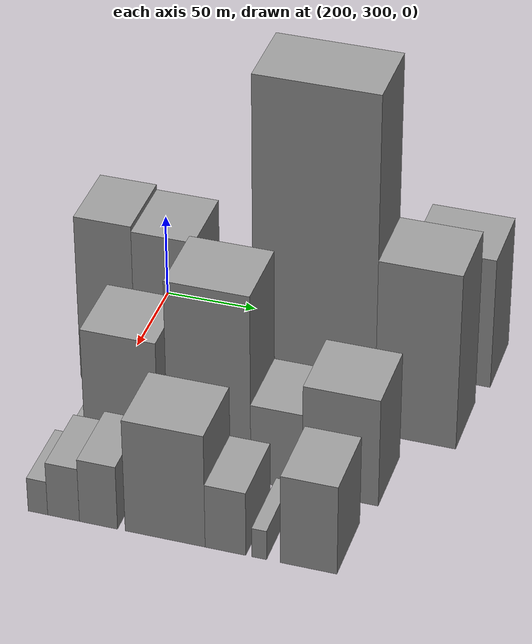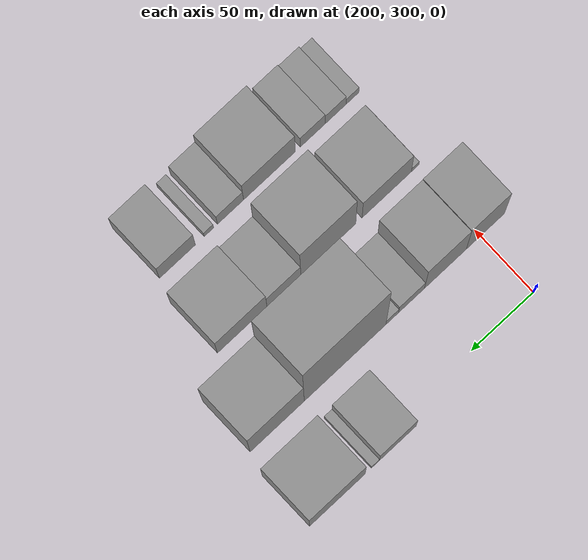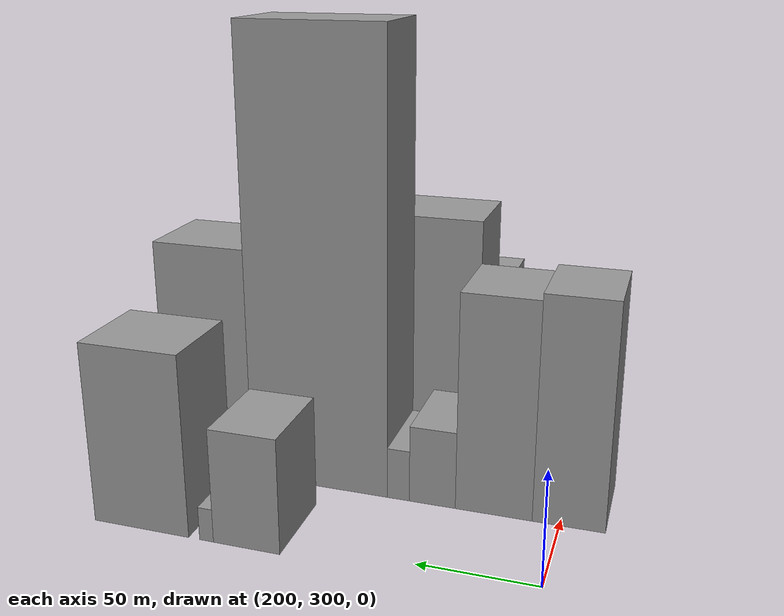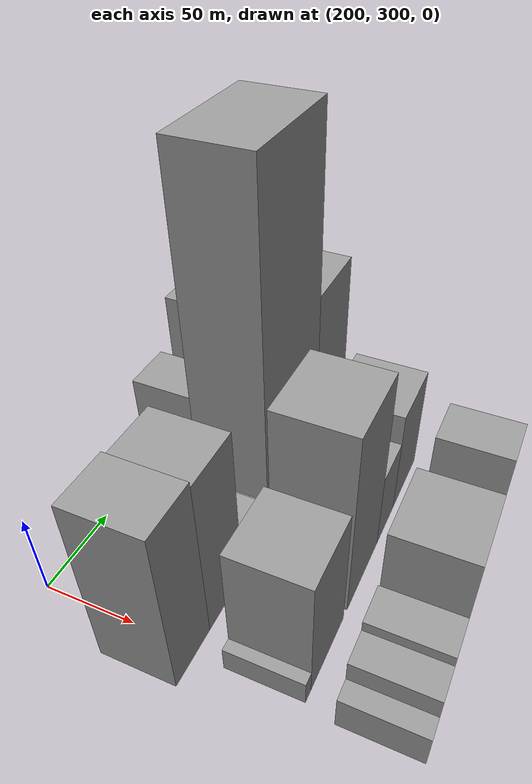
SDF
<sdf version="1.6">
 <world name="default">
  <model name="building_147">
   <static>1</static>
   <pose>210.0000 418.2549 0 0.000000 0.000000 0.000000</pose>
   <link name="link">
    <pose>0 0 25.50 0 0 0</pose>
    <collision name="collision"><geometry><box><size>40.0000 29.3568 51.0000</size></box></geometry></collision>
    <visual name="visual">
     <cast_shadows>0</cast_shadows>
     <geometry><box><size>40.0000 29.3568 51.0000</size></box></geometry>
     <material>
      <script>
       <uri>model://grey_wall/materials/scripts</uri>
       <uri>model://grey_wall/materials/textures</uri>
       <name>vrc/grey_wall</name>
      </script>
     </material>
    </visual>
   </link>
  </model>
  <model name="building_148">
   <static>1</static>
   <pose>210.0000 436.0573 0 0.000000 0.000000 0.000000</pose>
   <link name="link">
    <pose>0 0 7.50 0 0 0</pose>
    <collision name="collision"><geometry><box><size>40.0000 6.2479 15.0000</size></box></geometry></collision>
    <visual name="visual">
     <cast_shadows>0</cast_shadows>
     <geometry><box><size>40.0000 6.2479 15.0000</size></box></geometry>
     <material>
      <script>
       <uri>model://grey_wall/materials/scripts</uri>
       <uri>model://grey_wall/materials/textures</uri>
       <name>vrc/grey_wall</name>
      </script>
     </material>
    </visual>
   </link>
  </model>
  <model name="building_149">
   <static>1</static>
   <pose>210.0000 466.2391 0 0.000000 0.000000 0.000000</pose>
   <link name="link">
    <pose>0 0 40.50 0 0 0</pose>
    <collision name="collision"><geometry><box><size>40.0000 44.1155 81.0000</size></box></geometry></collision>
    <visual name="visual">
     <cast_shadows>0</cast_shadows>
     <geometry><box><size>40.0000 44.1155 81.0000</size></box></geometry>
     <material>
      <script>
       <uri>model://grey_wall/materials/scripts</uri>
       <uri>model://grey_wall/materials/textures</uri>
       <name>vrc/grey_wall</name>
      </script>
     </material>
    </visual>
   </link>
  </model>
  <model name="building_201">
   <static>1</static>
   <pose>265.0000 296.2826 0 0.000000 0.000000 0.000000</pose>
   <link name="link">
    <pose>0 0 51.00 0 0 0</pose>
    <collision name="collision"><geometry><box><size>40.0000 30.6699 102.0000</size></box></geometry></collision>
    <visual name="visual">
     <cast_shadows>0</cast_shadows>
     <geometry><box><size>40.0000 30.6699 102.0000</size></box></geometry>
     <material>
      <script>
       <uri>model://grey_wall/materials/scripts</uri>
       <uri>model://grey_wall/materials/textures</uri>
       <name>vrc/grey_wall</name>
      </script>
     </material>
    </visual>
   </link>
  </model>
  <model name="building_202">
   <static>1</static>
   <pose>265.0000 328.3271 0 0.000000 0.000000 0.000000</pose>
   <link name="link">
    <pose>0 0 49.50 0 0 0</pose>
    <collision name="collision"><geometry><box><size>40.0000 33.4192 99.0000</size></box></geometry></collision>
    <visual name="visual">
     <cast_shadows>0</cast_shadows>
     <geometry><box><size>40.0000 33.4192 99.0000</size></box></geometry>
     <material>
      <script>
       <uri>model://grey_wall/materials/scripts</uri>
       <uri>model://grey_wall/materials/textures</uri>
       <name>vrc/grey_wall</name>
      </script>
     </material>
    </visual>
   </link>
  </model>
  <model name="building_203">
   <static>1</static>
   <pose>265.0000 355.3910 0 0.000000 0.000000 0.000000</pose>
   <link name="link">
    <pose>0 0 18.00 0 0 0</pose>
    <collision name="collision"><geometry><box><size>40.0000 20.7087 36.0000</size></box></geometry></collision>
    <visual name="visual">
     <cast_shadows>0</cast_shadows>
     <geometry><box><size>40.0000 20.7087 36.0000</size></box></geometry>
     <material>
      <script>
       <uri>model://grey_wall/materials/scripts</uri>
       <uri>model://grey_wall/materials/textures</uri>
       <name>vrc/grey_wall</name>
      </script>
     </material>
    </visual>
   </link>
  </model>
  <model name="building_204">
   <static>1</static>
   <pose>265.0000 370.7972 0 0.000000 0.000000 0.000000</pose>
   <link name="link">
    <pose>0 0 12.00 0 0 0</pose>
    <collision name="collision"><geometry><box><size>40.0000 10.1036 24.0000</size></box></geometry></collision>
    <visual name="visual">
     <cast_shadows>0</cast_shadows>
     <geometry><box><size>40.0000 10.1036 24.0000</size></box></geometry>
     <material>
      <script>
       <uri>model://grey_wall/materials/scripts</uri>
       <uri>model://grey_wall/materials/textures</uri>
       <name>vrc/grey_wall</name>
      </script>
     </material>
    </visual>
   </link>
  </model>
  <model name="building_205">
   <static>1</static>
   <pose>265.0000 408.3681 0 0.000000 0.000000 0.000000</pose>
   <link name="link">
    <pose>0 0 102.00 0 0 0</pose>
    <collision name="collision"><geometry><box><size>40.0000 65.0383 204.0000</size></box></geometry></collision>
    <visual name="visual">
     <cast_shadows>0</cast_shadows>
     <geometry><box><size>40.0000 65.0383 204.0000</size></box></geometry>
     <material>
      <script>
       <uri>model://grey_wall/materials/scripts</uri>
       <uri>model://grey_wall/materials/textures</uri>
       <name>vrc/grey_wall</name>
      </script>
     </material>
    </visual>
   </link>
  </model>
  <model name="building_206">
   <static>1</static>
   <pose>265.0000 462.3944 0 0.000000 0.000000 0.000000</pose>
   <link name="link">
    <pose>0 0 54.00 0 0 0</pose>
    <collision name="collision"><geometry><box><size>40.0000 43.0142 108.0000</size></box></geometry></collision>
    <visual name="visual">
     <cast_shadows>0</cast_shadows>
     <geometry><box><size>40.0000 43.0142 108.0000</size></box></geometry>
     <material>
      <script>
       <uri>model://grey_wall/materials/scripts</uri>
       <uri>model://grey_wall/materials/textures</uri>
       <name>vrc/grey_wall</name>
      </script>
     </material>
    </visual>
   </link>
  </model>
  <model name="building_256">
   <static>1</static>
   <pose>320.0000 300.5435 0 0.000000 0.000000 0.000000</pose>
   <link name="link">
    <pose>0 0 7.50 0 0 0</pose>
    <collision name="collision"><geometry><box><size>40.0000 6.1724 15.0000</size></box></geometry></collision>
    <visual name="visual">
     <cast_shadows>0</cast_shadows>
     <geometry><box><size>40.0000 6.1724 15.0000</size></box></geometry>
     <material>
      <script>
       <uri>model://grey_wall/materials/scripts</uri>
       <uri>model://grey_wall/materials/textures</uri>
       <name>vrc/grey_wall</name>
      </script>
     </material>
    </visual>
   </link>
  </model>
  <model name="building_257">
   <static>1</static>
   <pose>320.0000 323.3587 0 0.000000 0.000000 0.000000</pose>
   <link name="link">
    <pose>0 0 37.50 0 0 0</pose>
    <collision name="collision"><geometry><box><size>40.0000 39.4580 75.0000</size></box></geometry></collision>
    <visual name="visual">
     <cast_shadows>0</cast_shadows>
     <geometry><box><size>40.0000 39.4580 75.0000</size></box></geometry>
     <material>
      <script>
       <uri>model://grey_wall/materials/scripts</uri>
       <uri>model://grey_wall/materials/textures</uri>
       <name>vrc/grey_wall</name>
      </script>
     </material>
    </visual>
   </link>
  </model>
  <model name="building_258">
   <static>1</static>
   <pose>320.0000 370.0550 0 0.000000 0.000000 0.000000</pose>
   <link name="link">
    <pose>0 0 57.00 0 0 0</pose>
    <collision name="collision"><geometry><box><size>40.0000 43.9347 114.0000</size></box></geometry></collision>
    <visual name="visual">
     <cast_shadows>0</cast_shadows>
     <geometry><box><size>40.0000 43.9347 114.0000</size></box></geometry>
     <material>
      <script>
       <uri>model://grey_wall/materials/scripts</uri>
       <uri>model://grey_wall/materials/textures</uri>
       <name>vrc/grey_wall</name>
      </script>
     </material>
    </visual>
   </link>
  </model>
  <model name="building_259">
   <static>1</static>
   <pose>320.0000 405.5257 0 0.000000 0.000000 0.000000</pose>
   <link name="link">
    <pose>0 0 24.00 0 0 0</pose>
    <collision name="collision"><geometry><box><size>40.0000 27.0067 48.0000</size></box></geometry></collision>
    <visual name="visual">
     <cast_shadows>0</cast_shadows>
     <geometry><box><size>40.0000 27.0067 48.0000</size></box></geometry>
     <material>
      <script>
       <uri>model://grey_wall/materials/scripts</uri>
       <uri>model://grey_wall/materials/textures</uri>
       <name>vrc/grey_wall</name>
      </script>
     </material>
    </visual>
   </link>
  </model>
  <model name="building_260">
   <static>1</static>
   <pose>320.0000 438.7214 0 0.000000 0.000000 0.000000</pose>
   <link name="link">
    <pose>0 0 33.00 0 0 0</pose>
    <collision name="collision"><geometry><box><size>40.0000 39.3847 66.0000</size></box></geometry></collision>
    <visual name="visual">
     <cast_shadows>0</cast_shadows>
     <geometry><box><size>40.0000 39.3847 66.0000</size></box></geometry>
     <material>
      <script>
       <uri>model://grey_wall/materials/scripts</uri>
       <uri>model://grey_wall/materials/textures</uri>
       <name>vrc/grey_wall</name>
      </script>
     </material>
    </visual>
   </link>
  </model>
  <model name="building_304">
   <static>1</static>
   <pose>375.0000 298.9762 0 0.000000 0.000000 0.000000</pose>
   <link name="link">
    <pose>0 0 10.50 0 0 0</pose>
    <collision name="collision"><geometry><box><size>40.0000 10.3123 21.0000</size></box></geometry></collision>
    <visual name="visual">
     <cast_shadows>0</cast_shadows>
     <geometry><box><size>40.0000 10.3123 21.0000</size></box></geometry>
     <material>
      <script>
       <uri>model://grey_wall/materials/scripts</uri>
       <uri>model://grey_wall/materials/textures</uri>
       <name>vrc/grey_wall</name>
      </script>
     </material>
    </visual>
   </link>
  </model>
  <model name="building_305">
   <static>1</static>
   <pose>375.0000 312.4984 0 0.000000 0.000000 0.000000</pose>
   <link name="link">
    <pose>0 0 16.50 0 0 0</pose>
    <collision name="collision"><geometry><box><size>40.0000 16.7322 33.0000</size></box></geometry></collision>
    <visual name="visual">
     <cast_shadows>0</cast_shadows>
     <geometry><box><size>40.0000 16.7322 33.0000</size></box></geometry>
     <material>
      <script>
       <uri>model://grey_wall/materials/scripts</uri>
       <uri>model://grey_wall/materials/textures</uri>
       <name>vrc/grey_wall</name>
      </script>
     </material>
    </visual>
   </link>
  </model>
  <model name="building_306">
   <static>1</static>
   <pose>375.0000 330.8156 0 0.000000 0.000000 0.000000</pose>
   <link name="link">
    <pose>0 0 19.50 0 0 0</pose>
    <collision name="collision"><geometry><box><size>40.0000 19.9020 39.0000</size></box></geometry></collision>
    <visual name="visual">
     <cast_shadows>0</cast_shadows>
     <geometry><box><size>40.0000 19.9020 39.0000</size></box></geometry>
     <material>
      <script>
       <uri>model://grey_wall/materials/scripts</uri>
       <uri>model://grey_wall/materials/textures</uri>
       <name>vrc/grey_wall</name>
      </script>
     </material>
    </visual>
   </link>
  </model>
  <model name="building_307">
   <static>1</static>
   <pose>375.0000 365.4545 0 0.000000 0.000000 0.000000</pose>
   <link name="link">
    <pose>0 0 34.50 0 0 0</pose>
    <collision name="collision"><geometry><box><size>40.0000 41.3759 69.0000</size></box></geometry></collision>
    <visual name="visual">
     <cast_shadows>0</cast_shadows>
     <geometry><box><size>40.0000 41.3759 69.0000</size></box></geometry>
     <material>
      <script>
       <uri>model://grey_wall/materials/scripts</uri>
       <uri>model://grey_wall/materials/textures</uri>
       <name>vrc/grey_wall</name>
      </script>
     </material>
    </visual>
   </link>
  </model>
  <model name="building_308">
   <static>1</static>
   <pose>375.0000 396.5728 0 0.000000 0.000000 0.000000</pose>
   <link name="link">
    <pose>0 0 19.50 0 0 0</pose>
    <collision name="collision"><geometry><box><size>40.0000 20.8608 39.0000</size></box></geometry></collision>
    <visual name="visual">
     <cast_shadows>0</cast_shadows>
     <geometry><box><size>40.0000 20.8608 39.0000</size></box></geometry>
     <material>
      <script>
       <uri>model://grey_wall/materials/scripts</uri>
       <uri>model://grey_wall/materials/textures</uri>
       <name>vrc/grey_wall</name>
      </script>
     </material>
    </visual>
   </link>
  </model>
  <model name="building_309">
   <static>1</static>
   <pose>375.0000 413.7911 0 0.000000 0.000000 0.000000</pose>
   <link name="link">
    <pose>0 0 9.00 0 0 0</pose>
    <collision name="collision"><geometry><box><size>40.0000 7.5757 18.0000</size></box></geometry></collision>
    <visual name="visual">
     <cast_shadows>0</cast_shadows>
     <geometry><box><size>40.0000 7.5757 18.0000</size></box></geometry>
     <material>
      <script>
       <uri>model://grey_wall/materials/scripts</uri>
       <uri>model://grey_wall/materials/textures</uri>
       <name>vrc/grey_wall</name>
      </script>
     </material>
    </visual>
   </link>
  </model>
  <model name="building_310">
   <static>1</static>
   <pose>375.0000 438.8886 0 0.000000 0.000000 0.000000</pose>
   <link name="link">
    <pose>0 0 27.00 0 0 0</pose>
    <collision name="collision"><geometry><box><size>40.0000 28.6194 54.0000</size></box></geometry></collision>
    <visual name="visual">
     <cast_shadows>0</cast_shadows>
     <geometry><box><size>40.0000 28.6194 54.0000</size></box></geometry>
     <material>
      <script>
       <uri>model://grey_wall/materials/scripts</uri>
       <uri>model://grey_wall/materials/textures</uri>
       <name>vrc/grey_wall</name>
      </script>
     </material>
    </visual>
   </link>
  </model>
 </world>
</sdf>
